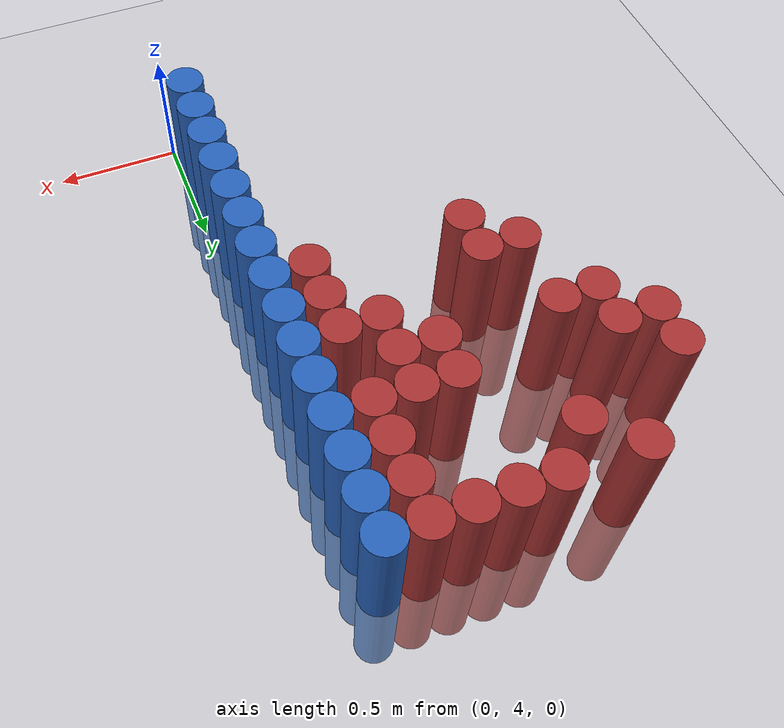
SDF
<sdf version="1.6">
 <world name="default">
  <model name="ground_plane">
   <static>1</static>
   <link name="link">
    <collision name="collision">
     <geometry><plane><normal>0 0 1</normal><size>100 100</size></plane></geometry>
     <surface><friction><ode><mu>100</mu><mu2>50</mu2></ode></friction></surface>
    </collision>
    <visual name="visual">
     <cast_shadows>0</cast_shadows>
     <geometry><plane><normal>0 0 1</normal><size>100 100</size></plane></geometry>
     <material>
      <script><uri>file://media/materials/scripts/gazebo.material</uri><name>Gazebo/Grey</name></script>
     </material>
    </visual>
   </link>
  </model>
  <model name="unit_cylinder_82">
   <static>1</static>
   <pose>-0.075000 4.125000 0.000000 0.000000 0.000000 0.000000</pose>
   <link name="link">
    <inertial>
     <mass>1</mass>
     <inertia><ixx>0.145833</ixx><ixy>0</ixy><ixz>0</ixz><iyy>0.145833</iyy><iyz>0</iyz><izz>0.125</izz></inertia>
    </inertial>
    <collision name="collision">
     <geometry><cylinder><radius>0.075000</radius><length>1</length></cylinder></geometry>
    </collision>
    <visual name="visual">
     <geometry><cylinder><radius>0.075000</radius><length>1</length></cylinder></geometry>
     <material>
      <ambient>0.152000 0.379000 0.720000 1</ambient>
      <diffuse>0.152000 0.379000 0.720000 1</diffuse>
     </material>
     <material>
      <script><name>Gazebo/Grey</name><uri>file://media/materials/scripts/gazebo.material</uri></script>
     </material>
    </visual>
    <sensor name="sensor_contact" type="contact"><contact><collision>collision</collision></contact></sensor>
   </link>
   <plugin filename="gz-sim-touchplugin-system" name="gz::sim::systems::TouchPlugin">
    <target>robot</target>
    <namespace>robot</namespace>
    <time>0.001</time>
    <enabled>true</enabled>
   </plugin>
  </model>
  <model name="unit_cylinder_84">
   <static>1</static>
   <pose>-0.075000 4.275000 0.000000 0.000000 0.000000 0.000000</pose>
   <link name="link">
    <inertial>
     <mass>1</mass>
     <inertia><ixx>0.145833</ixx><ixy>0</ixy><ixz>0</ixz><iyy>0.145833</iyy><iyz>0</iyz><izz>0.125</izz></inertia>
    </inertial>
    <collision name="collision">
     <geometry><cylinder><radius>0.075000</radius><length>1</length></cylinder></geometry>
    </collision>
    <visual name="visual">
     <geometry><cylinder><radius>0.075000</radius><length>1</length></cylinder></geometry>
     <material>
      <ambient>0.152000 0.379000 0.720000 1</ambient>
      <diffuse>0.152000 0.379000 0.720000 1</diffuse>
     </material>
     <material>
      <script><name>Gazebo/Grey</name><uri>file://media/materials/scripts/gazebo.material</uri></script>
     </material>
    </visual>
    <sensor name="sensor_contact" type="contact"><contact><collision>collision</collision></contact></sensor>
   </link>
   <plugin filename="gz-sim-touchplugin-system" name="gz::sim::systems::TouchPlugin">
    <target>robot</target>
    <namespace>robot</namespace>
    <time>0.001</time>
    <enabled>true</enabled>
   </plugin>
  </model>
  <model name="unit_cylinder_86">
   <static>1</static>
   <pose>-0.075000 4.425000 0.000000 0.000000 0.000000 0.000000</pose>
   <link name="link">
    <inertial>
     <mass>1</mass>
     <inertia><ixx>0.145833</ixx><ixy>0</ixy><ixz>0</ixz><iyy>0.145833</iyy><iyz>0</iyz><izz>0.125</izz></inertia>
    </inertial>
    <collision name="collision">
     <geometry><cylinder><radius>0.075000</radius><length>1</length></cylinder></geometry>
    </collision>
    <visual name="visual">
     <geometry><cylinder><radius>0.075000</radius><length>1</length></cylinder></geometry>
     <material>
      <ambient>0.152000 0.379000 0.720000 1</ambient>
      <diffuse>0.152000 0.379000 0.720000 1</diffuse>
     </material>
     <material>
      <script><name>Gazebo/Grey</name><uri>file://media/materials/scripts/gazebo.material</uri></script>
     </material>
    </visual>
    <sensor name="sensor_contact" type="contact"><contact><collision>collision</collision></contact></sensor>
   </link>
   <plugin filename="gz-sim-touchplugin-system" name="gz::sim::systems::TouchPlugin">
    <target>robot</target>
    <namespace>robot</namespace>
    <time>0.001</time>
    <enabled>true</enabled>
   </plugin>
  </model>
  <model name="unit_cylinder_88">
   <static>1</static>
   <pose>-0.075000 4.575000 0.000000 0.000000 0.000000 0.000000</pose>
   <link name="link">
    <inertial>
     <mass>1</mass>
     <inertia><ixx>0.145833</ixx><ixy>0</ixy><ixz>0</ixz><iyy>0.145833</iyy><iyz>0</iyz><izz>0.125</izz></inertia>
    </inertial>
    <collision name="collision">
     <geometry><cylinder><radius>0.075000</radius><length>1</length></cylinder></geometry>
    </collision>
    <visual name="visual">
     <geometry><cylinder><radius>0.075000</radius><length>1</length></cylinder></geometry>
     <material>
      <ambient>0.152000 0.379000 0.720000 1</ambient>
      <diffuse>0.152000 0.379000 0.720000 1</diffuse>
     </material>
     <material>
      <script><name>Gazebo/Grey</name><uri>file://media/materials/scripts/gazebo.material</uri></script>
     </material>
    </visual>
    <sensor name="sensor_contact" type="contact"><contact><collision>collision</collision></contact></sensor>
   </link>
   <plugin filename="gz-sim-touchplugin-system" name="gz::sim::systems::TouchPlugin">
    <target>robot</target>
    <namespace>robot</namespace>
    <time>0.001</time>
    <enabled>true</enabled>
   </plugin>
  </model>
  <model name="unit_cylinder_90">
   <static>1</static>
   <pose>-0.075000 4.725000 0.000000 0.000000 0.000000 0.000000</pose>
   <link name="link">
    <inertial>
     <mass>1</mass>
     <inertia><ixx>0.145833</ixx><ixy>0</ixy><ixz>0</ixz><iyy>0.145833</iyy><iyz>0</iyz><izz>0.125</izz></inertia>
    </inertial>
    <collision name="collision">
     <geometry><cylinder><radius>0.075000</radius><length>1</length></cylinder></geometry>
    </collision>
    <visual name="visual">
     <geometry><cylinder><radius>0.075000</radius><length>1</length></cylinder></geometry>
     <material>
      <ambient>0.152000 0.379000 0.720000 1</ambient>
      <diffuse>0.152000 0.379000 0.720000 1</diffuse>
     </material>
     <material>
      <script><name>Gazebo/Grey</name><uri>file://media/materials/scripts/gazebo.material</uri></script>
     </material>
    </visual>
    <sensor name="sensor_contact" type="contact"><contact><collision>collision</collision></contact></sensor>
   </link>
   <plugin filename="gz-sim-touchplugin-system" name="gz::sim::systems::TouchPlugin">
    <target>robot</target>
    <namespace>robot</namespace>
    <time>0.001</time>
    <enabled>true</enabled>
   </plugin>
  </model>
  <model name="unit_cylinder_92">
   <static>1</static>
   <pose>-0.075000 4.875000 0.000000 0.000000 0.000000 0.000000</pose>
   <link name="link">
    <inertial>
     <mass>1</mass>
     <inertia><ixx>0.145833</ixx><ixy>0</ixy><ixz>0</ixz><iyy>0.145833</iyy><iyz>0</iyz><izz>0.125</izz></inertia>
    </inertial>
    <collision name="collision">
     <geometry><cylinder><radius>0.075000</radius><length>1</length></cylinder></geometry>
    </collision>
    <visual name="visual">
     <geometry><cylinder><radius>0.075000</radius><length>1</length></cylinder></geometry>
     <material>
      <ambient>0.152000 0.379000 0.720000 1</ambient>
      <diffuse>0.152000 0.379000 0.720000 1</diffuse>
     </material>
     <material>
      <script><name>Gazebo/Grey</name><uri>file://media/materials/scripts/gazebo.material</uri></script>
     </material>
    </visual>
    <sensor name="sensor_contact" type="contact"><contact><collision>collision</collision></contact></sensor>
   </link>
   <plugin filename="gz-sim-touchplugin-system" name="gz::sim::systems::TouchPlugin">
    <target>robot</target>
    <namespace>robot</namespace>
    <time>0.001</time>
    <enabled>true</enabled>
   </plugin>
  </model>
  <model name="unit_cylinder_94">
   <static>1</static>
   <pose>-0.075000 5.025000 0.000000 0.000000 0.000000 0.000000</pose>
   <link name="link">
    <inertial>
     <mass>1</mass>
     <inertia><ixx>0.145833</ixx><ixy>0</ixy><ixz>0</ixz><iyy>0.145833</iyy><iyz>0</iyz><izz>0.125</izz></inertia>
    </inertial>
    <collision name="collision">
     <geometry><cylinder><radius>0.075000</radius><length>1</length></cylinder></geometry>
    </collision>
    <visual name="visual">
     <geometry><cylinder><radius>0.075000</radius><length>1</length></cylinder></geometry>
     <material>
      <ambient>0.152000 0.379000 0.720000 1</ambient>
      <diffuse>0.152000 0.379000 0.720000 1</diffuse>
     </material>
     <material>
      <script><name>Gazebo/Grey</name><uri>file://media/materials/scripts/gazebo.material</uri></script>
     </material>
    </visual>
    <sensor name="sensor_contact" type="contact"><contact><collision>collision</collision></contact></sensor>
   </link>
   <plugin filename="gz-sim-touchplugin-system" name="gz::sim::systems::TouchPlugin">
    <target>robot</target>
    <namespace>robot</namespace>
    <time>0.001</time>
    <enabled>true</enabled>
   </plugin>
  </model>
  <model name="unit_cylinder_248">
   <static>1</static>
   <pose>-1.275000 5.775000 0.000000 0.000000 0.000000 0.000000</pose>
   <link name="link">
    <inertial>
     <mass>1</mass>
     <inertia><ixx>0.145833</ixx><ixy>0</ixy><ixz>0</ixz><iyy>0.145833</iyy><iyz>0</iyz><izz>0.125</izz></inertia>
    </inertial>
    <collision name="collision">
     <geometry><cylinder><radius>0.075000</radius><length>1</length></cylinder></geometry>
    </collision>
    <visual name="visual">
     <geometry><cylinder><radius>0.075000</radius><length>1</length></cylinder></geometry>
     <material>
      <ambient>0.648000 0.192000 0.192000 1</ambient>
      <diffuse>0.648000 0.192000 0.192000 1</diffuse>
     </material>
     <material>
      <script><name>Gazebo/Grey</name><uri>file://media/materials/scripts/gazebo.material</uri></script>
     </material>
    </visual>
    <sensor name="sensor_contact" type="contact"><contact><collision>collision</collision></contact></sensor>
   </link>
   <plugin filename="gz-sim-touchplugin-system" name="gz::sim::systems::TouchPlugin">
    <target>robot</target>
    <namespace>robot</namespace>
    <time>0.001</time>
    <enabled>true</enabled>
   </plugin>
  </model>
  <model name="unit_cylinder_249">
   <static>1</static>
   <pose>-1.275000 5.925000 0.000000 0.000000 0.000000 0.000000</pose>
   <link name="link">
    <inertial>
     <mass>1</mass>
     <inertia><ixx>0.145833</ixx><ixy>0</ixy><ixz>0</ixz><iyy>0.145833</iyy><iyz>0</iyz><izz>0.125</izz></inertia>
    </inertial>
    <collision name="collision">
     <geometry><cylinder><radius>0.075000</radius><length>1</length></cylinder></geometry>
    </collision>
    <visual name="visual">
     <geometry><cylinder><radius>0.075000</radius><length>1</length></cylinder></geometry>
     <material>
      <ambient>0.648000 0.192000 0.192000 1</ambient>
      <diffuse>0.648000 0.192000 0.192000 1</diffuse>
     </material>
     <material>
      <script><name>Gazebo/Grey</name><uri>file://media/materials/scripts/gazebo.material</uri></script>
     </material>
    </visual>
    <sensor name="sensor_contact" type="contact"><contact><collision>collision</collision></contact></sensor>
   </link>
   <plugin filename="gz-sim-touchplugin-system" name="gz::sim::systems::TouchPlugin">
    <target>robot</target>
    <namespace>robot</namespace>
    <time>0.001</time>
    <enabled>true</enabled>
   </plugin>
  </model>
  <model name="unit_cylinder_260">
   <static>1</static>
   <pose>-1.125000 5.625000 0.000000 0.000000 0.000000 0.000000</pose>
   <link name="link">
    <inertial>
     <mass>1</mass>
     <inertia><ixx>0.145833</ixx><ixy>0</ixy><ixz>0</ixz><iyy>0.145833</iyy><iyz>0</iyz><izz>0.125</izz></inertia>
    </inertial>
    <collision name="collision">
     <geometry><cylinder><radius>0.075000</radius><length>1</length></cylinder></geometry>
    </collision>
    <visual name="visual">
     <geometry><cylinder><radius>0.075000</radius><length>1</length></cylinder></geometry>
     <material>
      <ambient>0.648000 0.192000 0.192000 1</ambient>
      <diffuse>0.648000 0.192000 0.192000 1</diffuse>
     </material>
     <material>
      <script><name>Gazebo/Grey</name><uri>file://media/materials/scripts/gazebo.material</uri></script>
     </material>
    </visual>
    <sensor name="sensor_contact" type="contact"><contact><collision>collision</collision></contact></sensor>
   </link>
   <plugin filename="gz-sim-touchplugin-system" name="gz::sim::systems::TouchPlugin">
    <target>robot</target>
    <namespace>robot</namespace>
    <time>0.001</time>
    <enabled>true</enabled>
   </plugin>
  </model>
  <model name="unit_cylinder_261">
   <static>1</static>
   <pose>-1.125000 5.775000 0.000000 0.000000 0.000000 0.000000</pose>
   <link name="link">
    <inertial>
     <mass>1</mass>
     <inertia><ixx>0.145833</ixx><ixy>0</ixy><ixz>0</ixz><iyy>0.145833</iyy><iyz>0</iyz><izz>0.125</izz></inertia>
    </inertial>
    <collision name="collision">
     <geometry><cylinder><radius>0.075000</radius><length>1</length></cylinder></geometry>
    </collision>
    <visual name="visual">
     <geometry><cylinder><radius>0.075000</radius><length>1</length></cylinder></geometry>
     <material>
      <ambient>0.648000 0.192000 0.192000 1</ambient>
      <diffuse>0.648000 0.192000 0.192000 1</diffuse>
     </material>
     <material>
      <script><name>Gazebo/Grey</name><uri>file://media/materials/scripts/gazebo.material</uri></script>
     </material>
    </visual>
    <sensor name="sensor_contact" type="contact"><contact><collision>collision</collision></contact></sensor>
   </link>
   <plugin filename="gz-sim-touchplugin-system" name="gz::sim::systems::TouchPlugin">
    <target>robot</target>
    <namespace>robot</namespace>
    <time>0.001</time>
    <enabled>true</enabled>
   </plugin>
  </model>
  <model name="unit_cylinder_270">
   <static>1</static>
   <pose>-0.975000 5.325000 0.000000 0.000000 0.000000 0.000000</pose>
   <link name="link">
    <inertial>
     <mass>1</mass>
     <inertia><ixx>0.145833</ixx><ixy>0</ixy><ixz>0</ixz><iyy>0.145833</iyy><iyz>0</iyz><izz>0.125</izz></inertia>
    </inertial>
    <collision name="collision">
     <geometry><cylinder><radius>0.075000</radius><length>1</length></cylinder></geometry>
    </collision>
    <visual name="visual">
     <geometry><cylinder><radius>0.075000</radius><length>1</length></cylinder></geometry>
     <material>
      <ambient>0.648000 0.192000 0.192000 1</ambient>
      <diffuse>0.648000 0.192000 0.192000 1</diffuse>
     </material>
     <material>
      <script><name>Gazebo/Grey</name><uri>file://media/materials/scripts/gazebo.material</uri></script>
     </material>
    </visual>
    <sensor name="sensor_contact" type="contact"><contact><collision>collision</collision></contact></sensor>
   </link>
   <plugin filename="gz-sim-touchplugin-system" name="gz::sim::systems::TouchPlugin">
    <target>robot</target>
    <namespace>robot</namespace>
    <time>0.001</time>
    <enabled>true</enabled>
   </plugin>
  </model>
  <model name="unit_cylinder_271">
   <static>1</static>
   <pose>-0.975000 5.625000 0.000000 0.000000 0.000000 0.000000</pose>
   <link name="link">
    <inertial>
     <mass>1</mass>
     <inertia><ixx>0.145833</ixx><ixy>0</ixy><ixz>0</ixz><iyy>0.145833</iyy><iyz>0</iyz><izz>0.125</izz></inertia>
    </inertial>
    <collision name="collision">
     <geometry><cylinder><radius>0.075000</radius><length>1</length></cylinder></geometry>
    </collision>
    <visual name="visual">
     <geometry><cylinder><radius>0.075000</radius><length>1</length></cylinder></geometry>
     <material>
      <ambient>0.648000 0.192000 0.192000 1</ambient>
      <diffuse>0.648000 0.192000 0.192000 1</diffuse>
     </material>
     <material>
      <script><name>Gazebo/Grey</name><uri>file://media/materials/scripts/gazebo.material</uri></script>
     </material>
    </visual>
    <sensor name="sensor_contact" type="contact"><contact><collision>collision</collision></contact></sensor>
   </link>
   <plugin filename="gz-sim-touchplugin-system" name="gz::sim::systems::TouchPlugin">
    <target>robot</target>
    <namespace>robot</namespace>
    <time>0.001</time>
    <enabled>true</enabled>
   </plugin>
  </model>
  <model name="unit_cylinder_272">
   <static>1</static>
   <pose>-0.975000 6.225000 0.000000 0.000000 0.000000 0.000000</pose>
   <link name="link">
    <inertial>
     <mass>1</mass>
     <inertia><ixx>0.145833</ixx><ixy>0</ixy><ixz>0</ixz><iyy>0.145833</iyy><iyz>0</iyz><izz>0.125</izz></inertia>
    </inertial>
    <collision name="collision">
     <geometry><cylinder><radius>0.075000</radius><length>1</length></cylinder></geometry>
    </collision>
    <visual name="visual">
     <geometry><cylinder><radius>0.075000</radius><length>1</length></cylinder></geometry>
     <material>
      <ambient>0.648000 0.192000 0.192000 1</ambient>
      <diffuse>0.648000 0.192000 0.192000 1</diffuse>
     </material>
     <material>
      <script><name>Gazebo/Grey</name><uri>file://media/materials/scripts/gazebo.material</uri></script>
     </material>
    </visual>
    <sensor name="sensor_contact" type="contact"><contact><collision>collision</collision></contact></sensor>
   </link>
   <plugin filename="gz-sim-touchplugin-system" name="gz::sim::systems::TouchPlugin">
    <target>robot</target>
    <namespace>robot</namespace>
    <time>0.001</time>
    <enabled>true</enabled>
   </plugin>
  </model>
  <model name="unit_cylinder_279">
   <static>1</static>
   <pose>-0.825000 5.175000 0.000000 0.000000 0.000000 0.000000</pose>
   <link name="link">
    <inertial>
     <mass>1</mass>
     <inertia><ixx>0.145833</ixx><ixy>0</ixy><ixz>0</ixz><iyy>0.145833</iyy><iyz>0</iyz><izz>0.125</izz></inertia>
    </inertial>
    <collision name="collision">
     <geometry><cylinder><radius>0.075000</radius><length>1</length></cylinder></geometry>
    </collision>
    <visual name="visual">
     <geometry><cylinder><radius>0.075000</radius><length>1</length></cylinder></geometry>
     <material>
      <ambient>0.648000 0.192000 0.192000 1</ambient>
      <diffuse>0.648000 0.192000 0.192000 1</diffuse>
     </material>
     <material>
      <script><name>Gazebo/Grey</name><uri>file://media/materials/scripts/gazebo.material</uri></script>
     </material>
    </visual>
    <sensor name="sensor_contact" type="contact"><contact><collision>collision</collision></contact></sensor>
   </link>
   <plugin filename="gz-sim-touchplugin-system" name="gz::sim::systems::TouchPlugin">
    <target>robot</target>
    <namespace>robot</namespace>
    <time>0.001</time>
    <enabled>true</enabled>
   </plugin>
  </model>
  <model name="unit_cylinder_280">
   <static>1</static>
   <pose>-0.825000 5.325000 0.000000 0.000000 0.000000 0.000000</pose>
   <link name="link">
    <inertial>
     <mass>1</mass>
     <inertia><ixx>0.145833</ixx><ixy>0</ixy><ixz>0</ixz><iyy>0.145833</iyy><iyz>0</iyz><izz>0.125</izz></inertia>
    </inertial>
    <collision name="collision">
     <geometry><cylinder><radius>0.075000</radius><length>1</length></cylinder></geometry>
    </collision>
    <visual name="visual">
     <geometry><cylinder><radius>0.075000</radius><length>1</length></cylinder></geometry>
     <material>
      <ambient>0.648000 0.192000 0.192000 1</ambient>
      <diffuse>0.648000 0.192000 0.192000 1</diffuse>
     </material>
     <material>
      <script><name>Gazebo/Grey</name><uri>file://media/materials/scripts/gazebo.material</uri></script>
     </material>
    </visual>
    <sensor name="sensor_contact" type="contact"><contact><collision>collision</collision></contact></sensor>
   </link>
   <plugin filename="gz-sim-touchplugin-system" name="gz::sim::systems::TouchPlugin">
    <target>robot</target>
    <namespace>robot</namespace>
    <time>0.001</time>
    <enabled>true</enabled>
   </plugin>
  </model>
  <model name="unit_cylinder_281">
   <static>1</static>
   <pose>-0.825000 6.075000 0.000000 0.000000 0.000000 0.000000</pose>
   <link name="link">
    <inertial>
     <mass>1</mass>
     <inertia><ixx>0.145833</ixx><ixy>0</ixy><ixz>0</ixz><iyy>0.145833</iyy><iyz>0</iyz><izz>0.125</izz></inertia>
    </inertial>
    <collision name="collision">
     <geometry><cylinder><radius>0.075000</radius><length>1</length></cylinder></geometry>
    </collision>
    <visual name="visual">
     <geometry><cylinder><radius>0.075000</radius><length>1</length></cylinder></geometry>
     <material>
      <ambient>0.648000 0.192000 0.192000 1</ambient>
      <diffuse>0.648000 0.192000 0.192000 1</diffuse>
     </material>
     <material>
      <script><name>Gazebo/Grey</name><uri>file://media/materials/scripts/gazebo.material</uri></script>
     </material>
    </visual>
    <sensor name="sensor_contact" type="contact"><contact><collision>collision</collision></contact></sensor>
   </link>
   <plugin filename="gz-sim-touchplugin-system" name="gz::sim::systems::TouchPlugin">
    <target>robot</target>
    <namespace>robot</namespace>
    <time>0.001</time>
    <enabled>true</enabled>
   </plugin>
  </model>
  <model name="unit_cylinder_288">
   <static>1</static>
   <pose>-0.675000 6.225000 0.000000 0.000000 0.000000 0.000000</pose>
   <link name="link">
    <inertial>
     <mass>1</mass>
     <inertia><ixx>0.145833</ixx><ixy>0</ixy><ixz>0</ixz><iyy>0.145833</iyy><iyz>0</iyz><izz>0.125</izz></inertia>
    </inertial>
    <collision name="collision">
     <geometry><cylinder><radius>0.075000</radius><length>1</length></cylinder></geometry>
    </collision>
    <visual name="visual">
     <geometry><cylinder><radius>0.075000</radius><length>1</length></cylinder></geometry>
     <material>
      <ambient>0.648000 0.192000 0.192000 1</ambient>
      <diffuse>0.648000 0.192000 0.192000 1</diffuse>
     </material>
     <material>
      <script><name>Gazebo/Grey</name><uri>file://media/materials/scripts/gazebo.material</uri></script>
     </material>
    </visual>
    <sensor name="sensor_contact" type="contact"><contact><collision>collision</collision></contact></sensor>
   </link>
   <plugin filename="gz-sim-touchplugin-system" name="gz::sim::systems::TouchPlugin">
    <target>robot</target>
    <namespace>robot</namespace>
    <time>0.001</time>
    <enabled>true</enabled>
   </plugin>
  </model>
  <model name="unit_cylinder_290">
   <static>1</static>
   <pose>-0.525000 5.625000 0.000000 0.000000 0.000000 0.000000</pose>
   <link name="link">
    <inertial>
     <mass>1</mass>
     <inertia><ixx>0.145833</ixx><ixy>0</ixy><ixz>0</ixz><iyy>0.145833</iyy><iyz>0</iyz><izz>0.125</izz></inertia>
    </inertial>
    <collision name="collision">
     <geometry><cylinder><radius>0.075000</radius><length>1</length></cylinder></geometry>
    </collision>
    <visual name="visual">
     <geometry><cylinder><radius>0.075000</radius><length>1</length></cylinder></geometry>
     <material>
      <ambient>0.648000 0.192000 0.192000 1</ambient>
      <diffuse>0.648000 0.192000 0.192000 1</diffuse>
     </material>
     <material>
      <script><name>Gazebo/Grey</name><uri>file://media/materials/scripts/gazebo.material</uri></script>
     </material>
    </visual>
    <sensor name="sensor_contact" type="contact"><contact><collision>collision</collision></contact></sensor>
   </link>
   <plugin filename="gz-sim-touchplugin-system" name="gz::sim::systems::TouchPlugin">
    <target>robot</target>
    <namespace>robot</namespace>
    <time>0.001</time>
    <enabled>true</enabled>
   </plugin>
  </model>
  <model name="unit_cylinder_291">
   <static>1</static>
   <pose>-0.525000 5.775000 0.000000 0.000000 0.000000 0.000000</pose>
   <link name="link">
    <inertial>
     <mass>1</mass>
     <inertia><ixx>0.145833</ixx><ixy>0</ixy><ixz>0</ixz><iyy>0.145833</iyy><iyz>0</iyz><izz>0.125</izz></inertia>
    </inertial>
    <collision name="collision">
     <geometry><cylinder><radius>0.075000</radius><length>1</length></cylinder></geometry>
    </collision>
    <visual name="visual">
     <geometry><cylinder><radius>0.075000</radius><length>1</length></cylinder></geometry>
     <material>
      <ambient>0.648000 0.192000 0.192000 1</ambient>
      <diffuse>0.648000 0.192000 0.192000 1</diffuse>
     </material>
     <material>
      <script><name>Gazebo/Grey</name><uri>file://media/materials/scripts/gazebo.material</uri></script>
     </material>
    </visual>
    <sensor name="sensor_contact" type="contact"><contact><collision>collision</collision></contact></sensor>
   </link>
   <plugin filename="gz-sim-touchplugin-system" name="gz::sim::systems::TouchPlugin">
    <target>robot</target>
    <namespace>robot</namespace>
    <time>0.001</time>
    <enabled>true</enabled>
   </plugin>
  </model>
  <model name="unit_cylinder_292">
   <static>1</static>
   <pose>-0.525000 6.225000 0.000000 0.000000 0.000000 0.000000</pose>
   <link name="link">
    <inertial>
     <mass>1</mass>
     <inertia><ixx>0.145833</ixx><ixy>0</ixy><ixz>0</ixz><iyy>0.145833</iyy><iyz>0</iyz><izz>0.125</izz></inertia>
    </inertial>
    <collision name="collision">
     <geometry><cylinder><radius>0.075000</radius><length>1</length></cylinder></geometry>
    </collision>
    <visual name="visual">
     <geometry><cylinder><radius>0.075000</radius><length>1</length></cylinder></geometry>
     <material>
      <ambient>0.648000 0.192000 0.192000 1</ambient>
      <diffuse>0.648000 0.192000 0.192000 1</diffuse>
     </material>
     <material>
      <script><name>Gazebo/Grey</name><uri>file://media/materials/scripts/gazebo.material</uri></script>
     </material>
    </visual>
    <sensor name="sensor_contact" type="contact"><contact><collision>collision</collision></contact></sensor>
   </link>
   <plugin filename="gz-sim-touchplugin-system" name="gz::sim::systems::TouchPlugin">
    <target>robot</target>
    <namespace>robot</namespace>
    <time>0.001</time>
    <enabled>true</enabled>
   </plugin>
  </model>
  <model name="unit_cylinder_297">
   <static>1</static>
   <pose>-0.375000 5.475000 0.000000 0.000000 0.000000 0.000000</pose>
   <link name="link">
    <inertial>
     <mass>1</mass>
     <inertia><ixx>0.145833</ixx><ixy>0</ixy><ixz>0</ixz><iyy>0.145833</iyy><iyz>0</iyz><izz>0.125</izz></inertia>
    </inertial>
    <collision name="collision">
     <geometry><cylinder><radius>0.075000</radius><length>1</length></cylinder></geometry>
    </collision>
    <visual name="visual">
     <geometry><cylinder><radius>0.075000</radius><length>1</length></cylinder></geometry>
     <material>
      <ambient>0.648000 0.192000 0.192000 1</ambient>
      <diffuse>0.648000 0.192000 0.192000 1</diffuse>
     </material>
     <material>
      <script><name>Gazebo/Grey</name><uri>file://media/materials/scripts/gazebo.material</uri></script>
     </material>
    </visual>
    <sensor name="sensor_contact" type="contact"><contact><collision>collision</collision></contact></sensor>
   </link>
   <plugin filename="gz-sim-touchplugin-system" name="gz::sim::systems::TouchPlugin">
    <target>robot</target>
    <namespace>robot</namespace>
    <time>0.001</time>
    <enabled>true</enabled>
   </plugin>
  </model>
  <model name="unit_cylinder_298">
   <static>1</static>
   <pose>-0.375000 5.625000 0.000000 0.000000 0.000000 0.000000</pose>
   <link name="link">
    <inertial>
     <mass>1</mass>
     <inertia><ixx>0.145833</ixx><ixy>0</ixy><ixz>0</ixz><iyy>0.145833</iyy><iyz>0</iyz><izz>0.125</izz></inertia>
    </inertial>
    <collision name="collision">
     <geometry><cylinder><radius>0.075000</radius><length>1</length></cylinder></geometry>
    </collision>
    <visual name="visual">
     <geometry><cylinder><radius>0.075000</radius><length>1</length></cylinder></geometry>
     <material>
      <ambient>0.648000 0.192000 0.192000 1</ambient>
      <diffuse>0.648000 0.192000 0.192000 1</diffuse>
     </material>
     <material>
      <script><name>Gazebo/Grey</name><uri>file://media/materials/scripts/gazebo.material</uri></script>
     </material>
    </visual>
    <sensor name="sensor_contact" type="contact"><contact><collision>collision</collision></contact></sensor>
   </link>
   <plugin filename="gz-sim-touchplugin-system" name="gz::sim::systems::TouchPlugin">
    <target>robot</target>
    <namespace>robot</namespace>
    <time>0.001</time>
    <enabled>true</enabled>
   </plugin>
  </model>
  <model name="unit_cylinder_299">
   <static>1</static>
   <pose>-0.375000 5.775000 0.000000 0.000000 0.000000 0.000000</pose>
   <link name="link">
    <inertial>
     <mass>1</mass>
     <inertia><ixx>0.145833</ixx><ixy>0</ixy><ixz>0</ixz><iyy>0.145833</iyy><iyz>0</iyz><izz>0.125</izz></inertia>
    </inertial>
    <collision name="collision">
     <geometry><cylinder><radius>0.075000</radius><length>1</length></cylinder></geometry>
    </collision>
    <visual name="visual">
     <geometry><cylinder><radius>0.075000</radius><length>1</length></cylinder></geometry>
     <material>
      <ambient>0.648000 0.192000 0.192000 1</ambient>
      <diffuse>0.648000 0.192000 0.192000 1</diffuse>
     </material>
     <material>
      <script><name>Gazebo/Grey</name><uri>file://media/materials/scripts/gazebo.material</uri></script>
     </material>
    </visual>
    <sensor name="sensor_contact" type="contact"><contact><collision>collision</collision></contact></sensor>
   </link>
   <plugin filename="gz-sim-touchplugin-system" name="gz::sim::systems::TouchPlugin">
    <target>robot</target>
    <namespace>robot</namespace>
    <time>0.001</time>
    <enabled>true</enabled>
   </plugin>
  </model>
  <model name="unit_cylinder_300">
   <static>1</static>
   <pose>-0.375000 6.225000 0.000000 0.000000 0.000000 0.000000</pose>
   <link name="link">
    <inertial>
     <mass>1</mass>
     <inertia><ixx>0.145833</ixx><ixy>0</ixy><ixz>0</ixz><iyy>0.145833</iyy><iyz>0</iyz><izz>0.125</izz></inertia>
    </inertial>
    <collision name="collision">
     <geometry><cylinder><radius>0.075000</radius><length>1</length></cylinder></geometry>
    </collision>
    <visual name="visual">
     <geometry><cylinder><radius>0.075000</radius><length>1</length></cylinder></geometry>
     <material>
      <ambient>0.648000 0.192000 0.192000 1</ambient>
      <diffuse>0.648000 0.192000 0.192000 1</diffuse>
     </material>
     <material>
      <script><name>Gazebo/Grey</name><uri>file://media/materials/scripts/gazebo.material</uri></script>
     </material>
    </visual>
    <sensor name="sensor_contact" type="contact"><contact><collision>collision</collision></contact></sensor>
   </link>
   <plugin filename="gz-sim-touchplugin-system" name="gz::sim::systems::TouchPlugin">
    <target>robot</target>
    <namespace>robot</namespace>
    <time>0.001</time>
    <enabled>true</enabled>
   </plugin>
  </model>
  <model name="unit_cylinder_312">
   <static>1</static>
   <pose>-0.225000 5.175000 0.000000 0.000000 0.000000 0.000000</pose>
   <link name="link">
    <inertial>
     <mass>1</mass>
     <inertia><ixx>0.145833</ixx><ixy>0</ixy><ixz>0</ixz><iyy>0.145833</iyy><iyz>0</iyz><izz>0.125</izz></inertia>
    </inertial>
    <collision name="collision">
     <geometry><cylinder><radius>0.075000</radius><length>1</length></cylinder></geometry>
    </collision>
    <visual name="visual">
     <geometry><cylinder><radius>0.075000</radius><length>1</length></cylinder></geometry>
     <material>
      <ambient>0.648000 0.192000 0.192000 1</ambient>
      <diffuse>0.648000 0.192000 0.192000 1</diffuse>
     </material>
     <material>
      <script><name>Gazebo/Grey</name><uri>file://media/materials/scripts/gazebo.material</uri></script>
     </material>
    </visual>
    <sensor name="sensor_contact" type="contact"><contact><collision>collision</collision></contact></sensor>
   </link>
   <plugin filename="gz-sim-touchplugin-system" name="gz::sim::systems::TouchPlugin">
    <target>robot</target>
    <namespace>robot</namespace>
    <time>0.001</time>
    <enabled>true</enabled>
   </plugin>
  </model>
  <model name="unit_cylinder_313">
   <static>1</static>
   <pose>-0.225000 5.325000 0.000000 0.000000 0.000000 0.000000</pose>
   <link name="link">
    <inertial>
     <mass>1</mass>
     <inertia><ixx>0.145833</ixx><ixy>0</ixy><ixz>0</ixz><iyy>0.145833</iyy><iyz>0</iyz><izz>0.125</izz></inertia>
    </inertial>
    <collision name="collision">
     <geometry><cylinder><radius>0.075000</radius><length>1</length></cylinder></geometry>
    </collision>
    <visual name="visual">
     <geometry><cylinder><radius>0.075000</radius><length>1</length></cylinder></geometry>
     <material>
      <ambient>0.648000 0.192000 0.192000 1</ambient>
      <diffuse>0.648000 0.192000 0.192000 1</diffuse>
     </material>
     <material>
      <script><name>Gazebo/Grey</name><uri>file://media/materials/scripts/gazebo.material</uri></script>
     </material>
    </visual>
    <sensor name="sensor_contact" type="contact"><contact><collision>collision</collision></contact></sensor>
   </link>
   <plugin filename="gz-sim-touchplugin-system" name="gz::sim::systems::TouchPlugin">
    <target>robot</target>
    <namespace>robot</namespace>
    <time>0.001</time>
    <enabled>true</enabled>
   </plugin>
  </model>
  <model name="unit_cylinder_314">
   <static>1</static>
   <pose>-0.225000 5.475000 0.000000 0.000000 0.000000 0.000000</pose>
   <link name="link">
    <inertial>
     <mass>1</mass>
     <inertia><ixx>0.145833</ixx><ixy>0</ixy><ixz>0</ixz><iyy>0.145833</iyy><iyz>0</iyz><izz>0.125</izz></inertia>
    </inertial>
    <collision name="collision">
     <geometry><cylinder><radius>0.075000</radius><length>1</length></cylinder></geometry>
    </collision>
    <visual name="visual">
     <geometry><cylinder><radius>0.075000</radius><length>1</length></cylinder></geometry>
     <material>
      <ambient>0.648000 0.192000 0.192000 1</ambient>
      <diffuse>0.648000 0.192000 0.192000 1</diffuse>
     </material>
     <material>
      <script><name>Gazebo/Grey</name><uri>file://media/materials/scripts/gazebo.material</uri></script>
     </material>
    </visual>
    <sensor name="sensor_contact" type="contact"><contact><collision>collision</collision></contact></sensor>
   </link>
   <plugin filename="gz-sim-touchplugin-system" name="gz::sim::systems::TouchPlugin">
    <target>robot</target>
    <namespace>robot</namespace>
    <time>0.001</time>
    <enabled>true</enabled>
   </plugin>
  </model>
  <model name="unit_cylinder_315">
   <static>1</static>
   <pose>-0.225000 5.775000 0.000000 0.000000 0.000000 0.000000</pose>
   <link name="link">
    <inertial>
     <mass>1</mass>
     <inertia><ixx>0.145833</ixx><ixy>0</ixy><ixz>0</ixz><iyy>0.145833</iyy><iyz>0</iyz><izz>0.125</izz></inertia>
    </inertial>
    <collision name="collision">
     <geometry><cylinder><radius>0.075000</radius><length>1</length></cylinder></geometry>
    </collision>
    <visual name="visual">
     <geometry><cylinder><radius>0.075000</radius><length>1</length></cylinder></geometry>
     <material>
      <ambient>0.648000 0.192000 0.192000 1</ambient>
      <diffuse>0.648000 0.192000 0.192000 1</diffuse>
     </material>
     <material>
      <script><name>Gazebo/Grey</name><uri>file://media/materials/scripts/gazebo.material</uri></script>
     </material>
    </visual>
    <sensor name="sensor_contact" type="contact"><contact><collision>collision</collision></contact></sensor>
   </link>
   <plugin filename="gz-sim-touchplugin-system" name="gz::sim::systems::TouchPlugin">
    <target>robot</target>
    <namespace>robot</namespace>
    <time>0.001</time>
    <enabled>true</enabled>
   </plugin>
  </model>
  <model name="unit_cylinder_316">
   <static>1</static>
   <pose>-0.225000 5.925000 0.000000 0.000000 0.000000 0.000000</pose>
   <link name="link">
    <inertial>
     <mass>1</mass>
     <inertia><ixx>0.145833</ixx><ixy>0</ixy><ixz>0</ixz><iyy>0.145833</iyy><iyz>0</iyz><izz>0.125</izz></inertia>
    </inertial>
    <collision name="collision">
     <geometry><cylinder><radius>0.075000</radius><length>1</length></cylinder></geometry>
    </collision>
    <visual name="visual">
     <geometry><cylinder><radius>0.075000</radius><length>1</length></cylinder></geometry>
     <material>
      <ambient>0.648000 0.192000 0.192000 1</ambient>
      <diffuse>0.648000 0.192000 0.192000 1</diffuse>
     </material>
     <material>
      <script><name>Gazebo/Grey</name><uri>file://media/materials/scripts/gazebo.material</uri></script>
     </material>
    </visual>
    <sensor name="sensor_contact" type="contact"><contact><collision>collision</collision></contact></sensor>
   </link>
   <plugin filename="gz-sim-touchplugin-system" name="gz::sim::systems::TouchPlugin">
    <target>robot</target>
    <namespace>robot</namespace>
    <time>0.001</time>
    <enabled>true</enabled>
   </plugin>
  </model>
  <model name="unit_cylinder_317">
   <static>1</static>
   <pose>-0.225000 6.075000 0.000000 0.000000 0.000000 0.000000</pose>
   <link name="link">
    <inertial>
     <mass>1</mass>
     <inertia><ixx>0.145833</ixx><ixy>0</ixy><ixz>0</ixz><iyy>0.145833</iyy><iyz>0</iyz><izz>0.125</izz></inertia>
    </inertial>
    <collision name="collision">
     <geometry><cylinder><radius>0.075000</radius><length>1</length></cylinder></geometry>
    </collision>
    <visual name="visual">
     <geometry><cylinder><radius>0.075000</radius><length>1</length></cylinder></geometry>
     <material>
      <ambient>0.648000 0.192000 0.192000 1</ambient>
      <diffuse>0.648000 0.192000 0.192000 1</diffuse>
     </material>
     <material>
      <script><name>Gazebo/Grey</name><uri>file://media/materials/scripts/gazebo.material</uri></script>
     </material>
    </visual>
    <sensor name="sensor_contact" type="contact"><contact><collision>collision</collision></contact></sensor>
   </link>
   <plugin filename="gz-sim-touchplugin-system" name="gz::sim::systems::TouchPlugin">
    <target>robot</target>
    <namespace>robot</namespace>
    <time>0.001</time>
    <enabled>true</enabled>
   </plugin>
  </model>
  <model name="unit_cylinder_318">
   <static>1</static>
   <pose>-0.225000 6.225000 0.000000 0.000000 0.000000 0.000000</pose>
   <link name="link">
    <inertial>
     <mass>1</mass>
     <inertia><ixx>0.145833</ixx><ixy>0</ixy><ixz>0</ixz><iyy>0.145833</iyy><iyz>0</iyz><izz>0.125</izz></inertia>
    </inertial>
    <collision name="collision">
     <geometry><cylinder><radius>0.075000</radius><length>1</length></cylinder></geometry>
    </collision>
    <visual name="visual">
     <geometry><cylinder><radius>0.075000</radius><length>1</length></cylinder></geometry>
     <material>
      <ambient>0.648000 0.192000 0.192000 1</ambient>
      <diffuse>0.648000 0.192000 0.192000 1</diffuse>
     </material>
     <material>
      <script><name>Gazebo/Grey</name><uri>file://media/materials/scripts/gazebo.material</uri></script>
     </material>
    </visual>
    <sensor name="sensor_contact" type="contact"><contact><collision>collision</collision></contact></sensor>
   </link>
   <plugin filename="gz-sim-touchplugin-system" name="gz::sim::systems::TouchPlugin">
    <target>robot</target>
    <namespace>robot</namespace>
    <time>0.001</time>
    <enabled>true</enabled>
   </plugin>
  </model>
  <model name="unit_cylinder_331">
   <static>1</static>
   <pose>-0.075000 5.175000 0.000000 0.000000 0.000000 0.000000</pose>
   <link name="link">
    <inertial>
     <mass>1</mass>
     <inertia><ixx>0.145833</ixx><ixy>0</ixy><ixz>0</ixz><iyy>0.145833</iyy><iyz>0</iyz><izz>0.125</izz></inertia>
    </inertial>
    <collision name="collision">
     <geometry><cylinder><radius>0.075000</radius><length>1</length></cylinder></geometry>
    </collision>
    <visual name="visual">
     <geometry><cylinder><radius>0.075000</radius><length>1</length></cylinder></geometry>
     <material>
      <ambient>0.152000 0.379000 0.720000 1</ambient>
      <diffuse>0.152000 0.379000 0.720000 1</diffuse>
     </material>
     <material>
      <script><name>Gazebo/Grey</name><uri>file://media/materials/scripts/gazebo.material</uri></script>
     </material>
    </visual>
    <sensor name="sensor_contact" type="contact"><contact><collision>collision</collision></contact></sensor>
   </link>
   <plugin filename="gz-sim-touchplugin-system" name="gz::sim::systems::TouchPlugin">
    <target>robot</target>
    <namespace>robot</namespace>
    <time>0.001</time>
    <enabled>true</enabled>
   </plugin>
  </model>
  <model name="unit_cylinder_332">
   <static>1</static>
   <pose>-0.075000 5.325000 0.000000 0.000000 0.000000 0.000000</pose>
   <link name="link">
    <inertial>
     <mass>1</mass>
     <inertia><ixx>0.145833</ixx><ixy>0</ixy><ixz>0</ixz><iyy>0.145833</iyy><iyz>0</iyz><izz>0.125</izz></inertia>
    </inertial>
    <collision name="collision">
     <geometry><cylinder><radius>0.075000</radius><length>1</length></cylinder></geometry>
    </collision>
    <visual name="visual">
     <geometry><cylinder><radius>0.075000</radius><length>1</length></cylinder></geometry>
     <material>
      <ambient>0.152000 0.379000 0.720000 1</ambient>
      <diffuse>0.152000 0.379000 0.720000 1</diffuse>
     </material>
     <material>
      <script><name>Gazebo/Grey</name><uri>file://media/materials/scripts/gazebo.material</uri></script>
     </material>
    </visual>
    <sensor name="sensor_contact" type="contact"><contact><collision>collision</collision></contact></sensor>
   </link>
   <plugin filename="gz-sim-touchplugin-system" name="gz::sim::systems::TouchPlugin">
    <target>robot</target>
    <namespace>robot</namespace>
    <time>0.001</time>
    <enabled>true</enabled>
   </plugin>
  </model>
  <model name="unit_cylinder_333">
   <static>1</static>
   <pose>-0.075000 5.475000 0.000000 0.000000 0.000000 0.000000</pose>
   <link name="link">
    <inertial>
     <mass>1</mass>
     <inertia><ixx>0.145833</ixx><ixy>0</ixy><ixz>0</ixz><iyy>0.145833</iyy><iyz>0</iyz><izz>0.125</izz></inertia>
    </inertial>
    <collision name="collision">
     <geometry><cylinder><radius>0.075000</radius><length>1</length></cylinder></geometry>
    </collision>
    <visual name="visual">
     <geometry><cylinder><radius>0.075000</radius><length>1</length></cylinder></geometry>
     <material>
      <ambient>0.152000 0.379000 0.720000 1</ambient>
      <diffuse>0.152000 0.379000 0.720000 1</diffuse>
     </material>
     <material>
      <script><name>Gazebo/Grey</name><uri>file://media/materials/scripts/gazebo.material</uri></script>
     </material>
    </visual>
    <sensor name="sensor_contact" type="contact"><contact><collision>collision</collision></contact></sensor>
   </link>
   <plugin filename="gz-sim-touchplugin-system" name="gz::sim::systems::TouchPlugin">
    <target>robot</target>
    <namespace>robot</namespace>
    <time>0.001</time>
    <enabled>true</enabled>
   </plugin>
  </model>
  <model name="unit_cylinder_334">
   <static>1</static>
   <pose>-0.075000 5.625000 0.000000 0.000000 0.000000 0.000000</pose>
   <link name="link">
    <inertial>
     <mass>1</mass>
     <inertia><ixx>0.145833</ixx><ixy>0</ixy><ixz>0</ixz><iyy>0.145833</iyy><iyz>0</iyz><izz>0.125</izz></inertia>
    </inertial>
    <collision name="collision">
     <geometry><cylinder><radius>0.075000</radius><length>1</length></cylinder></geometry>
    </collision>
    <visual name="visual">
     <geometry><cylinder><radius>0.075000</radius><length>1</length></cylinder></geometry>
     <material>
      <ambient>0.152000 0.379000 0.720000 1</ambient>
      <diffuse>0.152000 0.379000 0.720000 1</diffuse>
     </material>
     <material>
      <script><name>Gazebo/Grey</name><uri>file://media/materials/scripts/gazebo.material</uri></script>
     </material>
    </visual>
    <sensor name="sensor_contact" type="contact"><contact><collision>collision</collision></contact></sensor>
   </link>
   <plugin filename="gz-sim-touchplugin-system" name="gz::sim::systems::TouchPlugin">
    <target>robot</target>
    <namespace>robot</namespace>
    <time>0.001</time>
    <enabled>true</enabled>
   </plugin>
  </model>
  <model name="unit_cylinder_335">
   <static>1</static>
   <pose>-0.075000 5.775000 0.000000 0.000000 0.000000 0.000000</pose>
   <link name="link">
    <inertial>
     <mass>1</mass>
     <inertia><ixx>0.145833</ixx><ixy>0</ixy><ixz>0</ixz><iyy>0.145833</iyy><iyz>0</iyz><izz>0.125</izz></inertia>
    </inertial>
    <collision name="collision">
     <geometry><cylinder><radius>0.075000</radius><length>1</length></cylinder></geometry>
    </collision>
    <visual name="visual">
     <geometry><cylinder><radius>0.075000</radius><length>1</length></cylinder></geometry>
     <material>
      <ambient>0.152000 0.379000 0.720000 1</ambient>
      <diffuse>0.152000 0.379000 0.720000 1</diffuse>
     </material>
     <material>
      <script><name>Gazebo/Grey</name><uri>file://media/materials/scripts/gazebo.material</uri></script>
     </material>
    </visual>
    <sensor name="sensor_contact" type="contact"><contact><collision>collision</collision></contact></sensor>
   </link>
   <plugin filename="gz-sim-touchplugin-system" name="gz::sim::systems::TouchPlugin">
    <target>robot</target>
    <namespace>robot</namespace>
    <time>0.001</time>
    <enabled>true</enabled>
   </plugin>
  </model>
  <model name="unit_cylinder_336">
   <static>1</static>
   <pose>-0.075000 5.925000 0.000000 0.000000 0.000000 0.000000</pose>
   <link name="link">
    <inertial>
     <mass>1</mass>
     <inertia><ixx>0.145833</ixx><ixy>0</ixy><ixz>0</ixz><iyy>0.145833</iyy><iyz>0</iyz><izz>0.125</izz></inertia>
    </inertial>
    <collision name="collision">
     <geometry><cylinder><radius>0.075000</radius><length>1</length></cylinder></geometry>
    </collision>
    <visual name="visual">
     <geometry><cylinder><radius>0.075000</radius><length>1</length></cylinder></geometry>
     <material>
      <ambient>0.152000 0.379000 0.720000 1</ambient>
      <diffuse>0.152000 0.379000 0.720000 1</diffuse>
     </material>
     <material>
      <script><name>Gazebo/Grey</name><uri>file://media/materials/scripts/gazebo.material</uri></script>
     </material>
    </visual>
    <sensor name="sensor_contact" type="contact"><contact><collision>collision</collision></contact></sensor>
   </link>
   <plugin filename="gz-sim-touchplugin-system" name="gz::sim::systems::TouchPlugin">
    <target>robot</target>
    <namespace>robot</namespace>
    <time>0.001</time>
    <enabled>true</enabled>
   </plugin>
  </model>
  <model name="unit_cylinder_337">
   <static>1</static>
   <pose>-0.075000 6.075000 0.000000 0.000000 0.000000 0.000000</pose>
   <link name="link">
    <inertial>
     <mass>1</mass>
     <inertia><ixx>0.145833</ixx><ixy>0</ixy><ixz>0</ixz><iyy>0.145833</iyy><iyz>0</iyz><izz>0.125</izz></inertia>
    </inertial>
    <collision name="collision">
     <geometry><cylinder><radius>0.075000</radius><length>1</length></cylinder></geometry>
    </collision>
    <visual name="visual">
     <geometry><cylinder><radius>0.075000</radius><length>1</length></cylinder></geometry>
     <material>
      <ambient>0.152000 0.379000 0.720000 1</ambient>
      <diffuse>0.152000 0.379000 0.720000 1</diffuse>
     </material>
     <material>
      <script><name>Gazebo/Grey</name><uri>file://media/materials/scripts/gazebo.material</uri></script>
     </material>
    </visual>
    <sensor name="sensor_contact" type="contact"><contact><collision>collision</collision></contact></sensor>
   </link>
   <plugin filename="gz-sim-touchplugin-system" name="gz::sim::systems::TouchPlugin">
    <target>robot</target>
    <namespace>robot</namespace>
    <time>0.001</time>
    <enabled>true</enabled>
   </plugin>
  </model>
  <model name="unit_cylinder_338">
   <static>1</static>
   <pose>-0.075000 6.225000 0.000000 0.000000 0.000000 0.000000</pose>
   <link name="link">
    <inertial>
     <mass>1</mass>
     <inertia><ixx>0.145833</ixx><ixy>0</ixy><ixz>0</ixz><iyy>0.145833</iyy><iyz>0</iyz><izz>0.125</izz></inertia>
    </inertial>
    <collision name="collision">
     <geometry><cylinder><radius>0.075000</radius><length>1</length></cylinder></geometry>
    </collision>
    <visual name="visual">
     <geometry><cylinder><radius>0.075000</radius><length>1</length></cylinder></geometry>
     <material>
      <ambient>0.152000 0.379000 0.720000 1</ambient>
      <diffuse>0.152000 0.379000 0.720000 1</diffuse>
     </material>
     <material>
      <script><name>Gazebo/Grey</name><uri>file://media/materials/scripts/gazebo.material</uri></script>
     </material>
    </visual>
    <sensor name="sensor_contact" type="contact"><contact><collision>collision</collision></contact></sensor>
   </link>
   <plugin filename="gz-sim-touchplugin-system" name="gz::sim::systems::TouchPlugin">
    <target>robot</target>
    <namespace>robot</namespace>
    <time>0.001</time>
    <enabled>true</enabled>
   </plugin>
  </model>
 </world>
</sdf>
